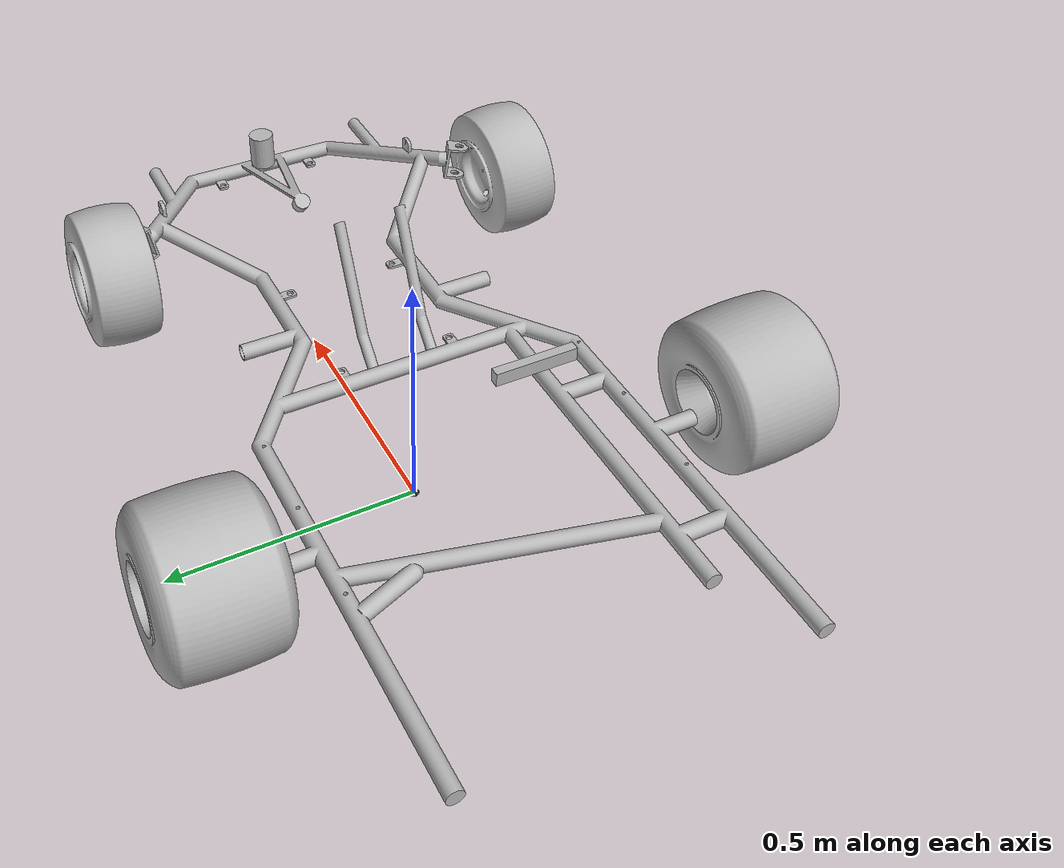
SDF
<?xml version="1.0" ?>
<sdf version="1.5">
  <model name="rover">
    <static>false</static>
    <link name="base_link">
      <inertial>
        <!-- subtracted wheel weights from dry weight of 771 kg -->
        <!-- http://www.polaris.com/en-us/ranger-utv/side-by-sides/ranger-ev/specifications -->
        <mass>720.0</mass>
        <inertia>
          <ixx>140</ixx>
          <ixy>0.0</ixy>
          <iyy>550</iyy>
          <ixz>0.0</ixz>
          <iyz>0.0</iyz>
          <izz>550</izz>
        </inertia>
        <!-- chassis c.o.g. near lateral/longitudinal center, height of 0.4 m -->
        <pose>0 0 0.335 0 0 0</pose>
      </inertial>
      <visual name="visual">
        <pose>0 0 0.3 1.570796 0 -1.570796</pose>
        <geometry>
          <mesh>
            <uri>model://kart/meshes/chassis.obj</uri>
          </mesh>
        </geometry>
      </visual>
      <collision name="base_link_bottom">
        <pose>0 0.0 0.335 0 0 0</pose>
        <geometry>
          <box>
            <size>1.0 0.5 0.06</size>
          </box>
        </geometry>
      </collision>
    </link>
    <link name='rover/imu_link'>
      <pose>0 0 0 0 0 0</pose>
      <inertial>
        <pose>0 0 0 0 0 0</pose>
        <mass>0.015</mass>
        <inertia>
          <ixx>1e-05</ixx>
          <ixy>0</ixy>
          <ixz>0</ixz>
          <iyy>1e-05</iyy>
          <iyz>0</iyz>
          <izz>1e-05</izz>
        </inertia>
      </inertial>
    </link>
    <joint name='rover/imu_joint' type='revolute'>
      <child>rover/imu_link</child>
      <parent>base_link</parent>
      <axis>
        <xyz>1 0 0</xyz>
        <limit>
          <lower>0</lower>
          <upper>0</upper>
          <effort>0</effort>
          <velocity>0</velocity>
        </limit>
        <dynamics>
          <spring_reference>0</spring_reference>
          <spring_stiffness>0</spring_stiffness>
        </dynamics>
        <use_parent_model_frame>1</use_parent_model_frame>
      </axis>
    </joint>
    <link name="front_left_wheel">
      <pose>0.47 0.5 0.34697 -1.52 0.0 0.0</pose>
      <inertial>
        <mass>12</mass>
        <!-- estimated from http://www.rzrforums.net/wheels-tires/1729-tire-wheel-weights-most-sizes.html -->
        <inertia>
          <ixx>0.5</ixx>
          <ixy>0.0</ixy>
          <iyy>0.5</iyy>
          <ixz>0.0</ixz>
          <iyz>0.0</iyz>
          <izz>1.0</izz>
        </inertia>
      </inertial>
      <collision name="collision">
        <geometry>
          <cylinder>
            <radius>0.127</radius>
            <length>0.1143</length>
          </cylinder>
        </geometry>
        <max_contacts>1</max_contacts>
        <surface>
          <friction>
            <ode>
              <mu>1.0</mu>
              <mu2>1.0</mu2>
              <fdir1>0 0 1</fdir1>
              <slip1>0.0</slip1>
              <slip2>0.0</slip2>
            </ode>
          </friction>
          <contact>
            <ode>
              <min_depth>0.005</min_depth>
              <kp>1e8</kp>
            </ode>
          </contact>
        </surface>
      </collision>
      <visual name="tire_visual">
        <pose>0 0 -0.08 3.14159 1.570796 0</pose>
        <geometry>
          <mesh>
            <uri>model://kart/meshes/front_wheel.obj</uri>
          </mesh>
        </geometry>
      </visual>
    </link>
    <link name="front_right_wheel">
      <pose>0.47 -0.5 0.34697 1.52 0.0 0.0</pose>
      <inertial>
        <mass>12</mass>
        <!-- estimated from http://www.rzrforums.net/wheels-tires/1729-tire-wheel-weights-most-sizes.html -->
        <inertia>
          <ixx>0.5</ixx>
          <ixy>0.0</ixy>
          <iyy>0.5</iyy>
          <ixz>0.0</ixz>
          <iyz>0.0</iyz>
          <izz>1.0</izz>
        </inertia>
      </inertial>
      <collision name="collision">
        <geometry>
          <cylinder>
            <radius>0.127</radius>
            <length>0.1143</length>
          </cylinder>
        </geometry>
        <max_contacts>1</max_contacts>
        <surface>
          <friction>
            <ode>
              <mu>1.0</mu>
              <mu2>1.0</mu2>
              <fdir1>0 0 1</fdir1>
              <slip1>0.0</slip1>
              <slip2>0.0</slip2>
            </ode>
          </friction>
          <contact>
            <ode>
              <min_depth>0.005</min_depth>
              <kp>1e8</kp>
            </ode>
          </contact>
        </surface>
      </collision>
      <visual name="tire_visual">
        <pose>0 0 -0.08 0 -1.570796 0</pose>
        <geometry>
          <mesh>
            <uri>model://kart/meshes/front_wheel.obj</uri>
          </mesh>
        </geometry>
      </visual>
    </link>
    <link name="rear_left_wheel">
      <pose>-0.31 0.5 0.34697 -1.52 0.0 0.0</pose>
      <inertial>
        <mass>12</mass>
        <!-- estimated from http://www.rzrforums.net/wheels-tires/1729-tire-wheel-weights-most-sizes.html -->
        <inertia>
          <ixx>0.5</ixx>
          <ixy>0.0</ixy>
          <iyy>0.5</iyy>
          <ixz>0.0</ixz>
          <iyz>0.0</iyz>
          <izz>1.0</izz>
        </inertia>
      </inertial>
      <collision name="collision">
        <geometry>
          <cylinder>
            <radius>0.127</radius>
            <length>0.1143</length>
          </cylinder>
        </geometry>
        <max_contacts>1</max_contacts>
        <surface>
          <friction>
            <ode>
              <mu>1.0</mu>
              <mu2>1.0</mu2>
              <fdir1>0 0 1</fdir1>
              <slip1>0.0</slip1>
              <slip2>0.0</slip2>
            </ode>
          </friction>
          <contact>
            <ode>
              <min_depth>0.005</min_depth>
              <kp>1e8</kp>
            </ode>
          </contact>
        </surface>
      </collision>
      <visual name="visual">
        <pose>0 0 -0.2 0 0 0</pose>
        <geometry>
          <mesh>
            <uri>model://kart/meshes/rear_wheel.obj</uri>
          </mesh>
        </geometry>
      </visual>
    </link>
    <link name="rear_right_wheel">
      <pose>-0.31 -0.5 0.34697 1.52 0.0 0.0</pose>
      <inertial>
        <mass>12</mass>
        <!-- estimated from http://www.rzrforums.net/wheels-tires/1729-tire-wheel-weights-most-sizes.html -->
        <inertia>
          <ixx>0.5</ixx>
          <ixy>0.0</ixy>
          <iyy>0.5</iyy>
          <ixz>0.0</ixz>
          <iyz>0.0</iyz>
          <izz>1.0</izz>
        </inertia>
      </inertial>
      <collision name="collision">
        <geometry>
          <cylinder>
            <radius>0.127</radius>
            <length>0.1143</length>
          </cylinder>
        </geometry>
        <max_contacts>1</max_contacts>
        <surface>
          <friction>
            <ode>
              <mu>1.0</mu>
              <mu2>1.0</mu2>
              <fdir1>0 0 1</fdir1>
              <slip1>0.0</slip1>
              <slip2>0.0</slip2>
            </ode>
          </friction>
          <contact>
            <ode>
              <min_depth>0.005</min_depth>
              <kp>1e8</kp>
            </ode>
          </contact>
        </surface>
      </collision>
      <visual name="visual">
        <pose>0 0 -0.2 0 0 0</pose>
        <geometry>
          <mesh>
            <uri>model://kart/meshes/rear_wheel.obj</uri>
          </mesh>
        </geometry>
      </visual>
    </link>
    <link name="front_right_wheel_steering_block">
      <pose>0.47 -0.5 0.35515 1.570796 0.0 0.0</pose>
      <inertial>
        <mass>1</mass>
        <inertia>
          <ixx>0.01</ixx>
          <ixy>0.0</ixy>
          <iyy>0.01</iyy>
          <ixz>0.0</ixz>
          <iyz>0.0</iyz>
          <izz>0.01</izz>
        </inertia>
      </inertial>
      <collision name="collision">
        <geometry>
          <cylinder>
            <radius>0.05</radius>
            <length>0.01</length>
          </cylinder>
        </geometry>
      </collision>
    </link>
    <link name="front_left_wheel_steering_block">
      <pose>0.47 0.5 0.35515 1.570796 0.0 0.0</pose>
      <inertial>
        <mass>1</mass>
        <inertia>
          <ixx>0.01</ixx>
          <ixy>0.0</ixy>
          <iyy>0.01</iyy>
          <ixz>0.0</ixz>
          <iyz>0.0</iyz>
          <izz>0.01</izz>
        </inertia>
      </inertial>
      <collision name="collision">
        <geometry>
          <cylinder>
            <radius>0.05</radius>
            <length>0.01</length>
          </cylinder>
        </geometry>
      </collision>
    </link>
    <joint type="revolute" name="front_left_steering_joint">
      <child>front_left_wheel_steering_block</child>
      <parent>base_link</parent>
      <axis>
        <xyz>0 0 1</xyz>
        <limit>
          <lower>-0.7727</lower>
          <upper>0.7727</upper>
        </limit>
        <dynamics>
          <damping>50.0</damping>
        </dynamics>
        <use_parent_model_frame>true</use_parent_model_frame>
      </axis>
      <physics>
        <ode>
          <cfm_damping>1</cfm_damping>
          <limit>
            <cfm>0.000000</cfm>
            <erp>0.900000</erp>
          </limit>
        </ode>
      </physics>
    </joint>
    <joint type="revolute" name="front_left_wheel_joint">
      <child>front_left_wheel</child>
      <parent>front_left_wheel_steering_block</parent>
      <axis>
        <xyz>0 1 0.05</xyz>
        <use_parent_model_frame>true</use_parent_model_frame>
      </axis>
    </joint>
    <joint type="revolute" name="front_right_steering_joint">
      <child>front_right_wheel_steering_block</child>
      <parent>base_link</parent>
      <axis>
        <xyz>0 0 1</xyz>
        <limit>
          <lower>-0.7727</lower>
          <upper>0.7727</upper>
        </limit>
        <dynamics>
          <damping>50.0</damping>
        </dynamics>
        <use_parent_model_frame>true</use_parent_model_frame>
      </axis>
      <physics>
        <ode>
          <cfm_damping>1</cfm_damping>
          <limit>
            <cfm>0.000000</cfm>
            <erp>0.900000</erp>
          </limit>
        </ode>
      </physics>
    </joint>
    <joint type="revolute" name="front_right_wheel_joint">
      <child>front_right_wheel</child>
      <parent>front_right_wheel_steering_block</parent>
      <axis>
        <xyz>0 1 -0.05</xyz>
        <use_parent_model_frame>true</use_parent_model_frame>
      </axis>
    </joint>
    <joint type="revolute" name="rear_left_wheel_joint">
      <child>rear_left_wheel</child>
      <parent>base_link</parent>
      <axis>
        <xyz>0 1 0.05</xyz>
        <use_parent_model_frame>true</use_parent_model_frame>
      </axis>
    </joint>
    <joint type="revolute" name="rear_right_wheel_joint">
      <pose>0.0 0.0 -0.1 0 0 0</pose>
      <child>rear_right_wheel</child>
      <parent>base_link</parent>
      <axis>
        <xyz>0 1 -0.05</xyz>
        <use_parent_model_frame>true</use_parent_model_frame>
      </axis>
    </joint>
    <!-- LiDAR -->
    <link name="hokuyo_link">
      <pose>0.75 0 0.35 0 0 0</pose>
      <inertial>
        <pose>0 0 0 0 0 0</pose>
        <mass>0.01</mass>
        <inertia>
          <ixx>0.0001</ixx>
          <ixy>0</ixy>
          <ixz>0</ixz>
          <iyy>0.0001</iyy>
          <iyz>0</iyz>
          <izz>0.0001</izz>
        </inertia>
      </inertial>
      <collision name="hokuyo_link_collision">
        <pose>0 0 0 0 0 0</pose>
        <geometry>
          <cylinder>
            <radius>0.025</radius>
            <length>0.07</length>
          </cylinder>
        </geometry>
        <surface>
          <contact>
            <ode/>
          </contact>
          <friction>
            <ode/>
          </friction>
        </surface>
      </collision>
      <visual name="hokuyo_link_visual">
        <pose>0 0 0 0 0 0</pose>
        <geometry>
          <cylinder>
            <radius>0.025</radius>
            <length>0.07</length>
          </cylinder>
        </geometry>
      </visual>
      <!-- Visuals / Collisions omitted for this example -->
      <sensor type="ray" name="head_hokuyo_sensor">
        <visualize>false</visualize>
        <ray>
          <scan>
            <horizontal>
              <samples>1081</samples>
              <resolution>1</resolution>
              <min_angle>-2.356</min_angle>
              <max_angle>2.356</max_angle>
            </horizontal>
          </scan>
          <range>
            <min>0.06</min>
            <max>4</max>
            <resolution>0.01</resolution>
          </range>
          <!-- Using gazebo's noise instead of plugin's -->
          <noise>
            <type>gaussian</type>
            <mean>0.0</mean>
            <stddev>0.04</stddev>
          </noise>
        </ray>
        <!-- Using gazebo's update rate instead of plugin's -->
        <update_rate>40</update_rate>

        <plugin name="gazebo_ros_head_hokuyo_controller" filename="libgazebo_ros_ray_sensor.so">
          <!-- Change namespace and output topic so published topic is /rrbot/laser/scan -->
          <ros>
            <namespace></namespace>
            <remapping>~/out:=scan</remapping>
          </ros>
          <!-- Set output to sensor_msgs/LaserScan to get same output type as gazebo_ros_laser -->
          <output_type>sensor_msgs/LaserScan</output_type>
        </plugin>
      </sensor>
    </link>
    <joint name='lidar_joint' type='fixed'>
      <parent>base_link</parent>
      <child>hokuyo_link</child>
    </joint>
    <!-- ZED2 -->
    <link name='camera_link'>
      <pose>-0.4 0 0.65 0 0 0</pose>
      <inertial>
        <pose>0 0 0 0 0 0</pose>
        <mass>0.035</mass>
        <inertia>
          <ixx>0.001</ixx>
          <ixy>0</ixy>
          <ixz>0</ixz>
          <iyy>0.001</iyy>
          <iyz>0</iyz>
          <izz>0.001</izz>
        </inertia>
      </inertial>
      <collision name='camera_link_collision'>
        <pose>0 0 0 0 0 0</pose>
        <geometry>
          <box>
            <size>0.015 0.13 0.022</size>
          </box>
        </geometry>
        <surface>
          <contact>
            <ode/>
          </contact>
          <friction>
            <ode/>
          </friction>
        </surface>
      </collision>
      <visual name='camera_link_visual'>
        <pose>0 0 0 0 0 0</pose>
        <geometry>
          <box>
            <size>0.015 0.13 0.022</size>
          </box>
        </geometry>
      </visual>
      <sensor name='depth_camera' type='depth'>
        <visualize>0</visualize>
        <update_rate>30</update_rate>
        <camera name='camera'>
          <horizontal_fov>1.91986</horizontal_fov>
          <image>
            <width>1920</width>
            <height>1080</height>
            <format>R8G8B8</format>
          </image>
          <clip>
            <near>0.3</near>
            <far>20.0</far>
          </clip>
        </camera>
        <plugin name='depth_camera_controller' filename='libgazebo_ros_camera.so'>
          <baseline>0.2</baseline>
          <alwaysOn>1</alwaysOn>
          <updateRate>0.0</updateRate>
          <frame_name>camera_depth_frame</frame_name>
          <pointCloudCutoff>0.5</pointCloudCutoff>
          <pointCloudCutoffMax>3.0</pointCloudCutoffMax>
          <distortionK1>0</distortionK1>
          <distortionK2>0</distortionK2>
          <distortionK3>0</distortionK3>
          <distortionT1>0</distortionT1>
          <distortionT2>0</distortionT2>
          <CxPrime>0</CxPrime>
          <Cx>0</Cx>
          <Cy>0</Cy>
          <focalLength>0</focalLength>
          <hackBaseline>0</hackBaseline>
        </plugin>
      </sensor>
    </link>
    <frame name='camera_depth_joint' attached_to='camera_link'>
      <pose>0 0 0 1.5708 -0 -1.5708</pose>
    </frame>
    <frame name='camera_depth_frame' attached_to='camera_depth_joint'/>
    <joint name="camera_base_joint" type="fixed">
      <parent>base_link</parent>
      <child>camera_link</child>
      <pose>0 0 0 0 0 0</pose>
    </joint>
    <!-- GPS -->
    <include>
      <uri>model://gps</uri>
      <pose>0 0 0 0 0 0</pose>
      <name>gps</name>
    </include>
    <joint name='gps_joint' type='fixed'>
      <child>gps::link</child>
      <parent>base_link</parent>
    </joint>
    <plugin name='barometer_plugin' filename='libgazebo_barometer_plugin.so'>
      <robotNamespace/>
      <pubRate>10</pubRate>
      <baroTopic>/baro</baroTopic>
    </plugin>
    <plugin name='groundtruth_plugin' filename='libgazebo_groundtruth_plugin.so'>
      <robotNamespace/>
    </plugin>
    <plugin name='magnetometer_plugin' filename='libgazebo_magnetometer_plugin.so'>
      <robotNamespace/>
      <pubRate>100</pubRate>
      <noiseDensity>0.0004</noiseDensity>
      <randomWalk>6.4e-06</randomWalk>
      <biasCorrelationTime>600</biasCorrelationTime>
      <magTopic>/mag</magTopic>
    </plugin>
    <plugin name='mavlink_interface' filename='libgazebo_mavlink_interface.so'>
      <robotNamespace/>
      <imuSubTopic>/imu</imuSubTopic>
      <magSubTopic>/mag</magSubTopic>
      <baroSubTopic>/baro</baroSubTopic>
      <gpsSubTopic>/gps</gpsSubTopic>
      <mavlink_addr>INADDR_ANY</mavlink_addr>
      <mavlink_tcp_port>4560</mavlink_tcp_port>
      <mavlink_udp_port>14560</mavlink_udp_port>
      <serialEnabled>0</serialEnabled>
      <serialDevice>/dev/ttyACM0</serialDevice>
      <baudRate>921600</baudRate>
      <qgc_addr>INADDR_ANY</qgc_addr>
      <qgc_udp_port>14550</qgc_udp_port>
      <sdk_addr>INADDR_ANY</sdk_addr>
      <sdk_udp_port>14540</sdk_udp_port>
      <hil_mode>0</hil_mode>
      <hil_state_level>0</hil_state_level>
      <send_vision_estimation>0</send_vision_estimation>
      <send_odometry>1</send_odometry>
      <enable_lockstep>1</enable_lockstep>
      <use_tcp>1</use_tcp>
      <motorSpeedCommandPubTopic>/gazebo/command/motor_speed</motorSpeedCommandPubTopic>
      <control_channels>
        <channel name="rear_left_wheel_drive">
          <input_index>5</input_index>
          <input_offset>0</input_offset>
          <input_scaling>40</input_scaling>
          <zero_position_disarmed>0</zero_position_disarmed>
          <zero_position_armed>0</zero_position_armed>
          <joint_control_type>velocity</joint_control_type>
          <joint_name>rear_left_wheel_joint</joint_name>
          <joint_control_pid>
            <p>50</p>
            <i>20</i>
            <d>2</d>
            <iMax>800</iMax>
            <iMin>-800</iMin>
            <cmdMax>1200</cmdMax>
            <cmdMin>-1200</cmdMin>
          </joint_control_pid>
        </channel>
        <channel name="rear_right_wheel_drive">
          <input_index>6</input_index>
          <input_offset>0</input_offset>
          <input_scaling>40</input_scaling>
          <zero_position_disarmed>0</zero_position_disarmed>
          <zero_position_armed>0</zero_position_armed>
          <joint_control_type>velocity</joint_control_type>
          <joint_name>rear_right_wheel_joint</joint_name>
          <joint_control_pid>
            <p>50</p>
            <i>20</i>
            <d>2</d>
            <iMax>800</iMax>
            <iMin>-800</iMin>
            <cmdMax>1200</cmdMax>
            <cmdMin>-1200</cmdMin>
          </joint_control_pid>
        </channel>
        <channel name="left_wheel_steering">
          <input_index>0</input_index>
          <input_offset>0</input_offset>
          <input_scaling>-0.9</input_scaling>
          <zero_position_disarmed>0</zero_position_disarmed>
          <zero_position_armed>0</zero_position_armed>
          <joint_control_type>position</joint_control_type>
          <joint_name>front_left_steering_joint</joint_name>
          <joint_control_pid>
            <p>90</p>
            <i>0.001</i>
            <d>5.75</d>
            <iMax>40</iMax>
            <iMin>-40</iMin>
            <cmdMax>80</cmdMax>
            <cmdMin>-80</cmdMin>
          </joint_control_pid>
        </channel>
        <channel name="right_wheel_steering">
          <input_index>1</input_index>
          <input_offset>0</input_offset>
          <input_scaling>-0.9</input_scaling>
          <zero_position_disarmed>0</zero_position_disarmed>
          <zero_position_armed>0</zero_position_armed>
          <joint_control_type>position</joint_control_type>
          <joint_name>front_right_steering_joint</joint_name>
          <joint_control_pid>
            <p>90</p>
            <i>0.001</i>
            <d>5.75</d>
            <iMax>40</iMax>
            <iMin>-40</iMin>
            <cmdMax>80</cmdMax>
            <cmdMin>-80</cmdMin>
          </joint_control_pid>
        </channel>
      </control_channels>
    </plugin>
    <plugin name='gazebo_imu_plugin' filename='libgazebo_imu_plugin.so'>
      <robotNamespace></robotNamespace>
      <linkName>rover/imu_link</linkName>
      <imuTopic>/imu</imuTopic>
      <gyroscopeNoiseDensity>0.0003394</gyroscopeNoiseDensity>
      <gyroscopeRandomWalk>3.8785e-05</gyroscopeRandomWalk>
      <gyroscopeBiasCorrelationTime>1000.0</gyroscopeBiasCorrelationTime>
      <gyroscopeTurnOnBiasSigma>0.0087</gyroscopeTurnOnBiasSigma>
      <accelerometerNoiseDensity>0.004</accelerometerNoiseDensity>
      <accelerometerRandomWalk>0.006</accelerometerRandomWalk>
      <accelerometerBiasCorrelationTime>300.0</accelerometerBiasCorrelationTime>
      <accelerometerTurnOnBiasSigma>0.196</accelerometerTurnOnBiasSigma>
    </plugin>
  </model>
</sdf>

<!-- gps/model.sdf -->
<sdf version="1.6">
  <model name="gps">
    <link name="link">
      <pose>0 0 0 0 0 0</pose>
      <inertial>
        <pose>0 0 0 0 0 0</pose>
        <mass>0.015</mass>
        <inertia>
          <ixx>1e-05</ixx>
          <ixy>0</ixy>
          <ixz>0</ixz>
          <iyy>1e-05</iyy>
          <iyz>0</iyz>
          <izz>1e-05</izz>
        </inertia>
      </inertial>
      <visual name="visual">
        <geometry>
          <cylinder>
            <radius>0.01</radius>
            <length>0.002</length>
          </cylinder>
        </geometry>
        <material>
          <script>
            <name>Gazebo/Black</name>
            <uri>file://usr/share/gz/gz-sim8/media/gazebo.material</uri>
          </script>
        </material>
      </visual>
      <sensor name="gps" type="gps">
        <pose>0 0 0 0 0 0</pose>
        <update_rate>5.0</update_rate>
        <always_on>true</always_on>
        <visualize>false</visualize>
        <!-- GpsSensor noise currently not used -->
        <plugin name="gps_plugin" filename="libgazebo_gps_plugin.so">
          <robotNamespace></robotNamespace>
          <gpsNoise>true</gpsNoise>
          <gpsXYRandomWalk>2.0</gpsXYRandomWalk>
          <gpsZRandomWalk>4.0</gpsZRandomWalk>
          <gpsXYNoiseDensity>2.0e-4</gpsXYNoiseDensity>
          <gpsZNoiseDensity>4.0e-4</gpsZNoiseDensity>
          <gpsVXYNoiseDensity>0.2</gpsVXYNoiseDensity>
          <gpsVZNoiseDensity>0.4</gpsVZNoiseDensity>
        </plugin>
      </sensor>
    </link>
  </model>
</sdf>
